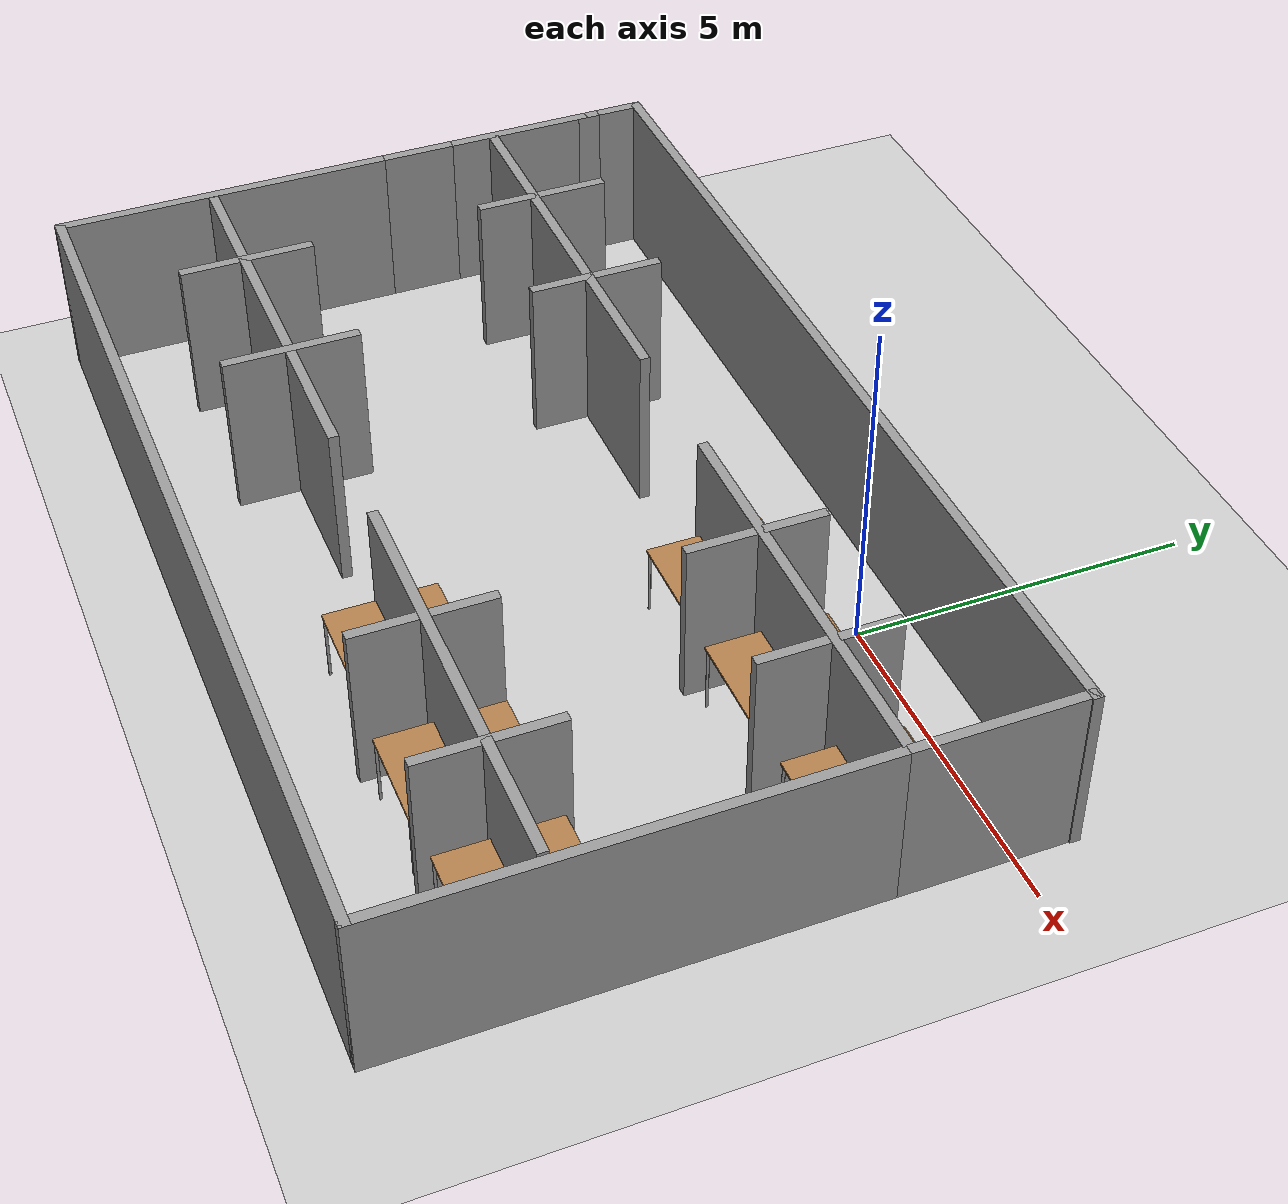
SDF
<sdf version="1.7">
 <world name="default">
  <model name="ground_plane">
   <static>1</static>
   <link name="link">
    <collision name="collision">
     <geometry><plane><normal>0 0 1</normal><size>100 100</size></plane></geometry>
     <surface><friction><ode><mu>100</mu><mu2>50</mu2></ode></friction></surface>
    </collision>
    <visual name="visual">
     <cast_shadows>0</cast_shadows>
     <geometry><plane><normal>0 0 1</normal><size>100 100</size></plane></geometry>
     <material>
      <script><uri>file://media/materials/scripts/gazebo.material</uri><name>Gazebo/Grey</name></script>
     </material>
    </visual>
   </link>
  </model>
  <model name="half_square">
   <pose>-2.87363 -3.76482 0 0 -0 0</pose>
   <link name="Wall_0">
    <collision name="Wall_0_Collision">
     <geometry><box><size>14.5 0.15 2.5</size></box></geometry>
     <pose>0 0 1.25 0 -0 0</pose>
    </collision>
    <visual name="Wall_0_Visual">
     <pose>0 0 1.25 0 -0 0</pose>
     <geometry><box><size>14.5 0.15 2.5</size></box></geometry>
     <material>
      <script><uri>file://media/materials/scripts/gazebo.material</uri><name>Gazebo/Grey</name></script>
      <ambient>1 1 1 1</ambient>
     </material>
     <meta><layer>0</layer></meta>
    </visual>
    <pose>-0.010056 -4.61503 0 0 -0 0</pose>
   </link>
   <link name="Wall_11">
    <collision name="Wall_11_Collision">
     <geometry><box><size>2.5 0.15 2.5</size></box></geometry>
     <pose>0 0 1.25 0 -0 0</pose>
    </collision>
    <visual name="Wall_11_Visual">
     <pose>0 0 1.25 0 -0 0</pose>
     <geometry><box><size>2.5 0.15 2.5</size></box></geometry>
     <material>
      <script><uri>file://media/materials/scripts/gazebo.material</uri><name>Gazebo/Grey</name></script>
      <ambient>1 1 1 1</ambient>
     </material>
     <meta><layer>0</layer></meta>
    </visual>
    <pose>7.16494 3.40997 0 0 -0 1.5708</pose>
   </link>
   <link name="Wall_13">
    <collision name="Wall_13_Collision">
     <geometry><box><size>0.730235 0.15 2.5</size></box></geometry>
     <pose>0 0 1.25 0 -0 0</pose>
    </collision>
    <visual name="Wall_13_Visual">
     <pose>0 0 1.25 0 -0 0</pose>
     <geometry><box><size>0.730235 0.15 2.5</size></box></geometry>
     <material>
      <script><uri>file://media/materials/scripts/gazebo.material</uri><name>Gazebo/Grey</name></script>
      <ambient>1 1 1 1</ambient>
     </material>
     <meta><layer>0</layer></meta>
    </visual>
    <pose>-7.18506 4.32491 0 0 -0 1.5708</pose>
   </link>
   <link name="Wall_14">
    <collision name="Wall_14_Collision">
     <geometry><box><size>14.5 0.15 2.5</size></box></geometry>
     <pose>0 0 1.25 0 -0 0</pose>
    </collision>
    <visual name="Wall_14_Visual">
     <pose>0 0 1.25 0 -0 0</pose>
     <geometry><box><size>14.5 0.15 2.5</size></box></geometry>
     <material>
      <script><uri>file://media/materials/scripts/gazebo.material</uri><name>Gazebo/Grey</name></script>
      <ambient>1 1 1 1</ambient>
     </material>
     <meta><layer>0</layer></meta>
    </visual>
    <pose>0.010057 4.61486 0 0 -0 0</pose>
   </link>
   <link name="Wall_2">
    <collision name="Wall_2_Collision">
     <geometry><box><size>5.25 0.15 2.5</size></box></geometry>
     <pose>0 0 1.25 0 -0 0</pose>
    </collision>
    <visual name="Wall_2_Visual">
     <pose>0 0 1.25 0 -0 0</pose>
     <geometry><box><size>5.25 0.15 2.5</size></box></geometry>
     <material>
      <script><uri>file://media/materials/scripts/gazebo.material</uri><name>Gazebo/Grey</name></script>
      <ambient>1 1 1 1</ambient>
     </material>
     <meta><layer>0</layer></meta>
    </visual>
    <pose>-7.18506 -2.06503 0 0 -0 1.5708</pose>
   </link>
   <link name="Wall_4">
    <collision name="Wall_4_Collision">
     <geometry><box><size>7 0.15 2.5</size></box></geometry>
     <pose>0 0 1.25 0 -0 0</pose>
    </collision>
    <visual name="Wall_4_Visual">
     <pose>0 0 1.25 0 -0 0</pose>
     <geometry><box><size>7 0.15 2.5</size></box></geometry>
     <material>
      <script><uri>file://media/materials/scripts/gazebo.material</uri><name>Gazebo/Grey</name></script>
      <ambient>1 1 1 1</ambient>
     </material>
     <meta><layer>0</layer></meta>
    </visual>
    <pose>7.16494 -1.19003 0 0 -0 1.5708</pose>
   </link>
   <link name="Wall_6">
    <collision name="Wall_6_Collision">
     <geometry><box><size>1.25 0.15 2.5</size></box></geometry>
     <pose>0 0 1.25 0 -0 0</pose>
    </collision>
    <visual name="Wall_6_Visual">
     <pose>0 0 1.25 0 -0 0</pose>
     <geometry><box><size>1.25 0.15 2.5</size></box></geometry>
     <material>
      <script><uri>file://media/materials/scripts/gazebo.material</uri><name>Gazebo/Grey</name></script>
      <ambient>1 1 1 1</ambient>
     </material>
     <meta><layer>0</layer></meta>
    </visual>
    <pose>-7.18506 1.03497 0 0 -0 1.5708</pose>
   </link>
   <link name="Wall_8">
    <collision name="Wall_8_Collision">
     <geometry><box><size>2.25 0.15 2.5</size></box></geometry>
     <pose>0 0 1.25 0 -0 0</pose>
    </collision>
    <visual name="Wall_8_Visual">
     <pose>0 0 1.25 0 -0 0</pose>
     <geometry><box><size>2.25 0.15 2.5</size></box></geometry>
     <material>
      <script><uri>file://media/materials/scripts/gazebo.material</uri><name>Gazebo/Grey</name></script>
      <ambient>1 1 1 1</ambient>
     </material>
     <meta><layer>0</layer></meta>
    </visual>
    <pose>-7.18506 2.63497 0 0 -0 1.5708</pose>
   </link>
   <link name="Wall_9">
    <collision name="Wall_9_Collision">
     <geometry><box><size>0.5 0.15 2.5</size></box></geometry>
     <pose>0 0 1.25 0 -0 0</pose>
    </collision>
    <visual name="Wall_9_Visual">
     <pose>0 0 1.25 0 -0 0</pose>
     <geometry><box><size>0.5 0.15 2.5</size></box></geometry>
     <material>
      <script><uri>file://media/materials/scripts/gazebo.material</uri><name>Gazebo/Grey</name></script>
      <ambient>1 1 1 1</ambient>
     </material>
     <meta><layer>0</layer></meta>
    </visual>
    <pose>-7.18506 3.85997 0 0 -0 1.5708</pose>
   </link>
   <static>1</static>
  </model>
  <model name="cubicle_walls">
   <pose>-2.89093 -3.53337 0 0 -0 0</pose>
   <link name="Wall_23">
    <collision name="Wall_23_Collision">
     <geometry><box><size>6 0.15 2.5</size></box></geometry>
     <pose>0 0 1.25 0 -0 0</pose>
    </collision>
    <visual name="Wall_23_Visual">
     <pose>0 0 1.25 0 -0 0</pose>
     <geometry><box><size>6 0.15 2.5</size></box></geometry>
     <material>
      <script><uri>file://media/materials/scripts/gazebo.material</uri><name>Gazebo/Grey</name></script>
      <ambient>1 1 1 1</ambient>
     </material>
     <meta><layer>0</layer></meta>
    </visual>
    <pose>4.1274 1.95737 0 0 -0 0</pose>
   </link>
   <link name="Wall_25">
    <collision name="Wall_25_Collision">
     <geometry><box><size>6.25 0.15 2.5</size></box></geometry>
     <pose>0 0 1.25 0 -0 0</pose>
    </collision>
    <visual name="Wall_25_Visual">
     <pose>0 0 1.25 0 -0 0</pose>
     <geometry><box><size>6.25 0.15 2.5</size></box></geometry>
     <material>
      <script><uri>file://media/materials/scripts/gazebo.material</uri><name>Gazebo/Grey</name></script>
      <ambient>1 1 1 1</ambient>
     </material>
     <meta><layer>0</layer></meta>
    </visual>
    <pose>3.94688 -2.51492 0 0 -0 0</pose>
   </link>
   <link name="Wall_27">
    <collision name="Wall_27_Collision">
     <geometry><box><size>6.25 0.15 2.5</size></box></geometry>
     <pose>0 0 1.25 0 -0 0</pose>
    </collision>
    <visual name="Wall_27_Visual">
     <pose>0 0 1.25 0 -0 0</pose>
     <geometry><box><size>6.25 0.15 2.5</size></box></geometry>
     <material>
      <script><uri>file://media/materials/scripts/gazebo.material</uri><name>Gazebo/Grey</name></script>
      <ambient>1 1 1 1</ambient>
     </material>
     <meta><layer>0</layer></meta>
    </visual>
    <pose>-3.9582 -2.5354 0 0 -0 3.14159</pose>
   </link>
   <link name="Wall_29">
    <collision name="Wall_29_Collision">
     <geometry><box><size>6.25 0.15 2.5</size></box></geometry>
     <pose>0 0 1.25 0 -0 0</pose>
    </collision>
    <visual name="Wall_29_Visual">
     <pose>0 0 1.25 0 -0 0</pose>
     <geometry><box><size>6.25 0.15 2.5</size></box></geometry>
     <material>
      <script><uri>file://media/materials/scripts/gazebo.material</uri><name>Gazebo/Grey</name></script>
      <ambient>1 1 1 1</ambient>
     </material>
     <meta><layer>0</layer></meta>
    </visual>
    <pose>-4.0024 1.95695 0 0 -0 3.14159</pose>
   </link>
   <link name="Wall_32">
    <collision name="Wall_32_Collision">
     <geometry><box><size>2 0.15 2.5</size></box></geometry>
     <pose>0 0 1.25 0 -0 0</pose>
    </collision>
    <visual name="Wall_32_Visual">
     <pose>0 0 1.25 0 -0 0</pose>
     <geometry><box><size>2 0.15 2.5</size></box></geometry>
     <material>
      <script><uri>file://media/materials/scripts/gazebo.material</uri><name>Gazebo/Grey</name></script>
      <ambient>1 1 1 1</ambient>
     </material>
     <meta><layer>0</layer></meta>
    </visual>
    <pose>5.20289 -2.49121 0 0 -0 -1.5708</pose>
   </link>
   <link name="Wall_34">
    <collision name="Wall_34_Collision">
     <geometry><box><size>2 0.15 2.5</size></box></geometry>
     <pose>0 0 1.25 0 -0 0</pose>
    </collision>
    <visual name="Wall_34_Visual">
     <pose>0 0 1.25 0 -0 0</pose>
     <geometry><box><size>2 0.15 2.5</size></box></geometry>
     <material>
      <script><uri>file://media/materials/scripts/gazebo.material</uri><name>Gazebo/Grey</name></script>
      <ambient>1 1 1 1</ambient>
     </material>
     <meta><layer>0</layer></meta>
    </visual>
    <pose>2.90891 -2.53337 0 0 -0 -1.5708</pose>
   </link>
   <link name="Wall_36">
    <collision name="Wall_36_Collision">
     <geometry><box><size>2 0.15 2.5</size></box></geometry>
     <pose>0 0 1.25 0 -0 0</pose>
    </collision>
    <visual name="Wall_36_Visual">
     <pose>0 0 1.25 0 -0 0</pose>
     <geometry><box><size>2 0.15 2.5</size></box></geometry>
     <material>
      <script><uri>file://media/materials/scripts/gazebo.material</uri><name>Gazebo/Grey</name></script>
      <ambient>1 1 1 1</ambient>
     </material>
     <meta><layer>0</layer></meta>
    </visual>
    <pose>5.17332 1.88452 0 0 -0 1.5708</pose>
   </link>
   <link name="Wall_40">
    <collision name="Wall_40_Collision">
     <geometry><box><size>2 0.15 2.5</size></box></geometry>
     <pose>0 0 1.25 0 -0 0</pose>
    </collision>
    <visual name="Wall_40_Visual">
     <pose>0 0 1.25 0 -0 0</pose>
     <geometry><box><size>2 0.15 2.5</size></box></geometry>
     <material>
      <script><uri>file://media/materials/scripts/gazebo.material</uri><name>Gazebo/Grey</name></script>
      <ambient>1 1 1 1</ambient>
     </material>
     <meta><layer>0</layer></meta>
    </visual>
    <pose>3.01751 1.89009 0 0 -0 1.5708</pose>
   </link>
   <link name="Wall_42">
    <collision name="Wall_42_Collision">
     <geometry><box><size>2 0.15 2.5</size></box></geometry>
     <pose>0 0 1.25 0 -0 0</pose>
    </collision>
    <visual name="Wall_42_Visual">
     <pose>0 0 1.25 0 -0 0</pose>
     <geometry><box><size>2 0.15 2.5</size></box></geometry>
     <material>
      <script><uri>file://media/materials/scripts/gazebo.material</uri><name>Gazebo/Grey</name></script>
      <ambient>1 1 1 1</ambient>
     </material>
     <meta><layer>0</layer></meta>
    </visual>
    <pose>-3.01912 2.06337 0 0 -0 -1.5708</pose>
   </link>
   <link name="Wall_44">
    <collision name="Wall_44_Collision">
     <geometry><box><size>2 0.15 2.5</size></box></geometry>
     <pose>0 0 1.25 0 -0 0</pose>
    </collision>
    <visual name="Wall_44_Visual">
     <pose>0 0 1.25 0 -0 0</pose>
     <geometry><box><size>2 0.15 2.5</size></box></geometry>
     <material>
      <script><uri>file://media/materials/scripts/gazebo.material</uri><name>Gazebo/Grey</name></script>
      <ambient>1 1 1 1</ambient>
     </material>
     <meta><layer>0</layer></meta>
    </visual>
    <pose>-5.31032 2.08086 0 0 -0 -1.5708</pose>
   </link>
   <link name="Wall_46">
    <collision name="Wall_46_Collision">
     <geometry><box><size>2 0.15 2.5</size></box></geometry>
     <pose>0 0 1.25 0 -0 0</pose>
    </collision>
    <visual name="Wall_46_Visual">
     <pose>0 0 1.25 0 -0 0</pose>
     <geometry><box><size>2 0.15 2.5</size></box></geometry>
     <material>
      <script><uri>file://media/materials/scripts/gazebo.material</uri><name>Gazebo/Grey</name></script>
      <ambient>1 1 1 1</ambient>
     </material>
     <meta><layer>0</layer></meta>
    </visual>
    <pose>-2.96649 -2.51109 0 0 -0 -1.5708</pose>
   </link>
   <link name="Wall_48">
    <collision name="Wall_48_Collision">
     <geometry><box><size>2 0.15 2.5</size></box></geometry>
     <pose>0 0 1.25 0 -0 0</pose>
    </collision>
    <visual name="Wall_48_Visual">
     <pose>0 0 1.25 0 -0 0</pose>
     <geometry><box><size>2 0.15 2.5</size></box></geometry>
     <material>
      <script><uri>file://media/materials/scripts/gazebo.material</uri><name>Gazebo/Grey</name></script>
      <ambient>1 1 1 1</ambient>
     </material>
     <meta><layer>0</layer></meta>
    </visual>
    <pose>-5.32952 -2.50161 0 0 -0 -1.5708</pose>
   </link>
   <static>1</static>
  </model>
  <model name="table">
   <static>1</static>
   <link name="link">
    <collision name="surface">
     <pose>0 0 1 0 -0 0</pose>
     <geometry><box><size>1.5 0.8 0.03</size></box></geometry>
     <surface><friction><ode><mu>0.6</mu><mu2>0.6</mu2></ode></friction></surface>
    </collision>
    <visual name="visual1">
     <pose>0 0 1 0 -0 0</pose>
     <geometry><box><size>1.5 0.8 0.03</size></box></geometry>
     <material>
      <script><uri>file://media/materials/scripts/gazebo.material</uri><name>Gazebo/Wood</name></script>
     </material>
    </visual>
    <collision name="front_left_leg">
     <pose>0.68 0.38 0.5 0 -0 0</pose>
     <geometry><cylinder><radius>0.02</radius><length>1</length></cylinder></geometry>
    </collision>
    <visual name="front_left_leg">
     <pose>0.68 0.38 0.5 0 -0 0</pose>
     <geometry><cylinder><radius>0.02</radius><length>1</length></cylinder></geometry>
     <material>
      <script><uri>file://media/materials/scripts/gazebo.material</uri><name>Gazebo/Grey</name></script>
     </material>
    </visual>
    <collision name="front_right_leg">
     <pose>0.68 -0.38 0.5 0 -0 0</pose>
     <geometry><cylinder><radius>0.02</radius><length>1</length></cylinder></geometry>
    </collision>
    <visual name="front_right_leg">
     <pose>0.68 -0.38 0.5 0 -0 0</pose>
     <geometry><cylinder><radius>0.02</radius><length>1</length></cylinder></geometry>
     <material>
      <script><uri>file://media/materials/scripts/gazebo.material</uri><name>Gazebo/Grey</name></script>
     </material>
    </visual>
    <collision name="back_right_leg">
     <pose>-0.68 -0.38 0.5 0 -0 0</pose>
     <geometry><cylinder><radius>0.02</radius><length>1</length></cylinder></geometry>
    </collision>
    <visual name="back_right_leg">
     <pose>-0.68 -0.38 0.5 0 -0 0</pose>
     <geometry><cylinder><radius>0.02</radius><length>1</length></cylinder></geometry>
     <material>
      <script><uri>file://media/materials/scripts/gazebo.material</uri><name>Gazebo/Grey</name></script>
     </material>
    </visual>
    <collision name="back_left_leg">
     <pose>-0.68 0.38 0.5 0 -0 0</pose>
     <geometry><cylinder><radius>0.02</radius><length>1</length></cylinder></geometry>
    </collision>
    <visual name="back_left_leg">
     <pose>-0.68 0.38 0.5 0 -0 0</pose>
     <geometry><cylinder><radius>0.02</radius><length>1</length></cylinder></geometry>
     <material>
      <script><uri>file://media/materials/scripts/gazebo.material</uri><name>Gazebo/Grey</name></script>
     </material>
    </visual>
   </link>
   <pose>1.18362 -1.10469 0 0 -0 0</pose>
  </model>
  <model name="table_0">
   <static>1</static>
   <link name="link">
    <collision name="surface">
     <pose>0 0 1 0 -0 0</pose>
     <geometry><box><size>1.5 0.8 0.03</size></box></geometry>
     <surface><friction><ode><mu>0.6</mu><mu2>0.6</mu2></ode></friction></surface>
    </collision>
    <visual name="visual1">
     <pose>0 0 1 0 -0 0</pose>
     <geometry><box><size>1.5 0.8 0.03</size></box></geometry>
     <material>
      <script><uri>file://media/materials/scripts/gazebo.material</uri><name>Gazebo/Wood</name></script>
     </material>
    </visual>
    <collision name="front_left_leg">
     <pose>0.68 0.38 0.5 0 -0 0</pose>
     <geometry><cylinder><radius>0.02</radius><length>1</length></cylinder></geometry>
    </collision>
    <visual name="front_left_leg">
     <pose>0.68 0.38 0.5 0 -0 0</pose>
     <geometry><cylinder><radius>0.02</radius><length>1</length></cylinder></geometry>
     <material>
      <script><uri>file://media/materials/scripts/gazebo.material</uri><name>Gazebo/Grey</name></script>
     </material>
    </visual>
    <collision name="front_right_leg">
     <pose>0.68 -0.38 0.5 0 -0 0</pose>
     <geometry><cylinder><radius>0.02</radius><length>1</length></cylinder></geometry>
    </collision>
    <visual name="front_right_leg">
     <pose>0.68 -0.38 0.5 0 -0 0</pose>
     <geometry><cylinder><radius>0.02</radius><length>1</length></cylinder></geometry>
     <material>
      <script><uri>file://media/materials/scripts/gazebo.material</uri><name>Gazebo/Grey</name></script>
     </material>
    </visual>
    <collision name="back_right_leg">
     <pose>-0.68 -0.38 0.5 0 -0 0</pose>
     <geometry><cylinder><radius>0.02</radius><length>1</length></cylinder></geometry>
    </collision>
    <visual name="back_right_leg">
     <pose>-0.68 -0.38 0.5 0 -0 0</pose>
     <geometry><cylinder><radius>0.02</radius><length>1</length></cylinder></geometry>
     <material>
      <script><uri>file://media/materials/scripts/gazebo.material</uri><name>Gazebo/Grey</name></script>
     </material>
    </visual>
    <collision name="back_left_leg">
     <pose>-0.68 0.38 0.5 0 -0 0</pose>
     <geometry><cylinder><radius>0.02</radius><length>1</length></cylinder></geometry>
    </collision>
    <visual name="back_left_leg">
     <pose>-0.68 0.38 0.5 0 -0 0</pose>
     <geometry><cylinder><radius>0.02</radius><length>1</length></cylinder></geometry>
     <material>
      <script><uri>file://media/materials/scripts/gazebo.material</uri><name>Gazebo/Grey</name></script>
     </material>
    </visual>
   </link>
   <pose>3.41773 -1.11914 0 0 -0 0</pose>
  </model>
  <model name="table_1">
   <static>1</static>
   <link name="link">
    <collision name="surface">
     <pose>0 0 1 0 -0 0</pose>
     <geometry><box><size>1.5 0.8 0.03</size></box></geometry>
     <surface><friction><ode><mu>0.6</mu><mu2>0.6</mu2></ode></friction></surface>
    </collision>
    <visual name="visual1">
     <pose>0 0 1 0 -0 0</pose>
     <geometry><box><size>1.5 0.8 0.03</size></box></geometry>
     <material>
      <script><uri>file://media/materials/scripts/gazebo.material</uri><name>Gazebo/Wood</name></script>
     </material>
    </visual>
    <collision name="front_left_leg">
     <pose>0.68 0.38 0.5 0 -0 0</pose>
     <geometry><cylinder><radius>0.02</radius><length>1</length></cylinder></geometry>
    </collision>
    <visual name="front_left_leg">
     <pose>0.68 0.38 0.5 0 -0 0</pose>
     <geometry><cylinder><radius>0.02</radius><length>1</length></cylinder></geometry>
     <material>
      <script><uri>file://media/materials/scripts/gazebo.material</uri><name>Gazebo/Grey</name></script>
     </material>
    </visual>
    <collision name="front_right_leg">
     <pose>0.68 -0.38 0.5 0 -0 0</pose>
     <geometry><cylinder><radius>0.02</radius><length>1</length></cylinder></geometry>
    </collision>
    <visual name="front_right_leg">
     <pose>0.68 -0.38 0.5 0 -0 0</pose>
     <geometry><cylinder><radius>0.02</radius><length>1</length></cylinder></geometry>
     <material>
      <script><uri>file://media/materials/scripts/gazebo.material</uri><name>Gazebo/Grey</name></script>
     </material>
    </visual>
    <collision name="back_right_leg">
     <pose>-0.68 -0.38 0.5 0 -0 0</pose>
     <geometry><cylinder><radius>0.02</radius><length>1</length></cylinder></geometry>
    </collision>
    <visual name="back_right_leg">
     <pose>-0.68 -0.38 0.5 0 -0 0</pose>
     <geometry><cylinder><radius>0.02</radius><length>1</length></cylinder></geometry>
     <material>
      <script><uri>file://media/materials/scripts/gazebo.material</uri><name>Gazebo/Grey</name></script>
     </material>
    </visual>
    <collision name="back_left_leg">
     <pose>-0.68 0.38 0.5 0 -0 0</pose>
     <geometry><cylinder><radius>0.02</radius><length>1</length></cylinder></geometry>
    </collision>
    <visual name="back_left_leg">
     <pose>-0.68 0.38 0.5 0 -0 0</pose>
     <geometry><cylinder><radius>0.02</radius><length>1</length></cylinder></geometry>
     <material>
      <script><uri>file://media/materials/scripts/gazebo.material</uri><name>Gazebo/Grey</name></script>
     </material>
    </visual>
   </link>
   <pose>3.39795 -2.01239 0 0 -0 0</pose>
  </model>
  <model name="table_2">
   <static>1</static>
   <link name="link">
    <collision name="surface">
     <pose>0 0 1 0 -0 0</pose>
     <geometry><box><size>1.5 0.8 0.03</size></box></geometry>
     <surface><friction><ode><mu>0.6</mu><mu2>0.6</mu2></ode></friction></surface>
    </collision>
    <visual name="visual1">
     <pose>0 0 1 0 -0 0</pose>
     <geometry><box><size>1.5 0.8 0.03</size></box></geometry>
     <material>
      <script><uri>file://media/materials/scripts/gazebo.material</uri><name>Gazebo/Wood</name></script>
     </material>
    </visual>
    <collision name="front_left_leg">
     <pose>0.68 0.38 0.5 0 -0 0</pose>
     <geometry><cylinder><radius>0.02</radius><length>1</length></cylinder></geometry>
    </collision>
    <visual name="front_left_leg">
     <pose>0.68 0.38 0.5 0 -0 0</pose>
     <geometry><cylinder><radius>0.02</radius><length>1</length></cylinder></geometry>
     <material>
      <script><uri>file://media/materials/scripts/gazebo.material</uri><name>Gazebo/Grey</name></script>
     </material>
    </visual>
    <collision name="front_right_leg">
     <pose>0.68 -0.38 0.5 0 -0 0</pose>
     <geometry><cylinder><radius>0.02</radius><length>1</length></cylinder></geometry>
    </collision>
    <visual name="front_right_leg">
     <pose>0.68 -0.38 0.5 0 -0 0</pose>
     <geometry><cylinder><radius>0.02</radius><length>1</length></cylinder></geometry>
     <material>
      <script><uri>file://media/materials/scripts/gazebo.material</uri><name>Gazebo/Grey</name></script>
     </material>
    </visual>
    <collision name="back_right_leg">
     <pose>-0.68 -0.38 0.5 0 -0 0</pose>
     <geometry><cylinder><radius>0.02</radius><length>1</length></cylinder></geometry>
    </collision>
    <visual name="back_right_leg">
     <pose>-0.68 -0.38 0.5 0 -0 0</pose>
     <geometry><cylinder><radius>0.02</radius><length>1</length></cylinder></geometry>
     <material>
      <script><uri>file://media/materials/scripts/gazebo.material</uri><name>Gazebo/Grey</name></script>
     </material>
    </visual>
    <collision name="back_left_leg">
     <pose>-0.68 0.38 0.5 0 -0 0</pose>
     <geometry><cylinder><radius>0.02</radius><length>1</length></cylinder></geometry>
    </collision>
    <visual name="back_left_leg">
     <pose>-0.68 0.38 0.5 0 -0 0</pose>
     <geometry><cylinder><radius>0.02</radius><length>1</length></cylinder></geometry>
     <material>
      <script><uri>file://media/materials/scripts/gazebo.material</uri><name>Gazebo/Grey</name></script>
     </material>
    </visual>
   </link>
   <pose>1.17009 -2.05921 0 0 -0 0</pose>
  </model>
  <model name="table_3">
   <static>1</static>
   <link name="link">
    <collision name="surface">
     <pose>0 0 1 0 -0 0</pose>
     <geometry><box><size>1.5 0.8 0.03</size></box></geometry>
     <surface><friction><ode><mu>0.6</mu><mu2>0.6</mu2></ode></friction></surface>
    </collision>
    <visual name="visual1">
     <pose>0 0 1 0 -0 0</pose>
     <geometry><box><size>1.5 0.8 0.03</size></box></geometry>
     <material>
      <script><uri>file://media/materials/scripts/gazebo.material</uri><name>Gazebo/Wood</name></script>
     </material>
    </visual>
    <collision name="front_left_leg">
     <pose>0.68 0.38 0.5 0 -0 0</pose>
     <geometry><cylinder><radius>0.02</radius><length>1</length></cylinder></geometry>
    </collision>
    <visual name="front_left_leg">
     <pose>0.68 0.38 0.5 0 -0 0</pose>
     <geometry><cylinder><radius>0.02</radius><length>1</length></cylinder></geometry>
     <material>
      <script><uri>file://media/materials/scripts/gazebo.material</uri><name>Gazebo/Grey</name></script>
     </material>
    </visual>
    <collision name="front_right_leg">
     <pose>0.68 -0.38 0.5 0 -0 0</pose>
     <geometry><cylinder><radius>0.02</radius><length>1</length></cylinder></geometry>
    </collision>
    <visual name="front_right_leg">
     <pose>0.68 -0.38 0.5 0 -0 0</pose>
     <geometry><cylinder><radius>0.02</radius><length>1</length></cylinder></geometry>
     <material>
      <script><uri>file://media/materials/scripts/gazebo.material</uri><name>Gazebo/Grey</name></script>
     </material>
    </visual>
    <collision name="back_right_leg">
     <pose>-0.68 -0.38 0.5 0 -0 0</pose>
     <geometry><cylinder><radius>0.02</radius><length>1</length></cylinder></geometry>
    </collision>
    <visual name="back_right_leg">
     <pose>-0.68 -0.38 0.5 0 -0 0</pose>
     <geometry><cylinder><radius>0.02</radius><length>1</length></cylinder></geometry>
     <material>
      <script><uri>file://media/materials/scripts/gazebo.material</uri><name>Gazebo/Grey</name></script>
     </material>
    </visual>
    <collision name="back_left_leg">
     <pose>-0.68 0.38 0.5 0 -0 0</pose>
     <geometry><cylinder><radius>0.02</radius><length>1</length></cylinder></geometry>
    </collision>
    <visual name="back_left_leg">
     <pose>-0.68 0.38 0.5 0 -0 0</pose>
     <geometry><cylinder><radius>0.02</radius><length>1</length></cylinder></geometry>
     <material>
      <script><uri>file://media/materials/scripts/gazebo.material</uri><name>Gazebo/Grey</name></script>
     </material>
    </visual>
   </link>
   <pose>-0.867477 -2.03442 0 0 -0 0</pose>
  </model>
  <model name="table_4">
   <static>1</static>
   <link name="link">
    <collision name="surface">
     <pose>0 0 1 0 -0 0</pose>
     <geometry><box><size>1.5 0.8 0.03</size></box></geometry>
     <surface><friction><ode><mu>0.6</mu><mu2>0.6</mu2></ode></friction></surface>
    </collision>
    <visual name="visual1">
     <pose>0 0 1 0 -0 0</pose>
     <geometry><box><size>1.5 0.8 0.03</size></box></geometry>
     <material>
      <script><uri>file://media/materials/scripts/gazebo.material</uri><name>Gazebo/Wood</name></script>
     </material>
    </visual>
    <collision name="front_left_leg">
     <pose>0.68 0.38 0.5 0 -0 0</pose>
     <geometry><cylinder><radius>0.02</radius><length>1</length></cylinder></geometry>
    </collision>
    <visual name="front_left_leg">
     <pose>0.68 0.38 0.5 0 -0 0</pose>
     <geometry><cylinder><radius>0.02</radius><length>1</length></cylinder></geometry>
     <material>
      <script><uri>file://media/materials/scripts/gazebo.material</uri><name>Gazebo/Grey</name></script>
     </material>
    </visual>
    <collision name="front_right_leg">
     <pose>0.68 -0.38 0.5 0 -0 0</pose>
     <geometry><cylinder><radius>0.02</radius><length>1</length></cylinder></geometry>
    </collision>
    <visual name="front_right_leg">
     <pose>0.68 -0.38 0.5 0 -0 0</pose>
     <geometry><cylinder><radius>0.02</radius><length>1</length></cylinder></geometry>
     <material>
      <script><uri>file://media/materials/scripts/gazebo.material</uri><name>Gazebo/Grey</name></script>
     </material>
    </visual>
    <collision name="back_right_leg">
     <pose>-0.68 -0.38 0.5 0 -0 0</pose>
     <geometry><cylinder><radius>0.02</radius><length>1</length></cylinder></geometry>
    </collision>
    <visual name="back_right_leg">
     <pose>-0.68 -0.38 0.5 0 -0 0</pose>
     <geometry><cylinder><radius>0.02</radius><length>1</length></cylinder></geometry>
     <material>
      <script><uri>file://media/materials/scripts/gazebo.material</uri><name>Gazebo/Grey</name></script>
     </material>
    </visual>
    <collision name="back_left_leg">
     <pose>-0.68 0.38 0.5 0 -0 0</pose>
     <geometry><cylinder><radius>0.02</radius><length>1</length></cylinder></geometry>
    </collision>
    <visual name="back_left_leg">
     <pose>-0.68 0.38 0.5 0 -0 0</pose>
     <geometry><cylinder><radius>0.02</radius><length>1</length></cylinder></geometry>
     <material>
      <script><uri>file://media/materials/scripts/gazebo.material</uri><name>Gazebo/Grey</name></script>
     </material>
    </visual>
   </link>
   <pose>-0.882753 -1.12704 0 0 -0 0</pose>
  </model>
  <model name="table_5">
   <static>1</static>
   <link name="link">
    <collision name="surface">
     <pose>0 0 1 0 -0 0</pose>
     <geometry><box><size>1.5 0.8 0.03</size></box></geometry>
     <surface><friction><ode><mu>0.6</mu><mu2>0.6</mu2></ode></friction></surface>
    </collision>
    <visual name="visual1">
     <pose>0 0 1 0 -0 0</pose>
     <geometry><box><size>1.5 0.8 0.03</size></box></geometry>
     <material>
      <script><uri>file://media/materials/scripts/gazebo.material</uri><name>Gazebo/Wood</name></script>
     </material>
    </visual>
    <collision name="front_left_leg">
     <pose>0.68 0.38 0.5 0 -0 0</pose>
     <geometry><cylinder><radius>0.02</radius><length>1</length></cylinder></geometry>
    </collision>
    <visual name="front_left_leg">
     <pose>0.68 0.38 0.5 0 -0 0</pose>
     <geometry><cylinder><radius>0.02</radius><length>1</length></cylinder></geometry>
     <material>
      <script><uri>file://media/materials/scripts/gazebo.material</uri><name>Gazebo/Grey</name></script>
     </material>
    </visual>
    <collision name="front_right_leg">
     <pose>0.68 -0.38 0.5 0 -0 0</pose>
     <geometry><cylinder><radius>0.02</radius><length>1</length></cylinder></geometry>
    </collision>
    <visual name="front_right_leg">
     <pose>0.68 -0.38 0.5 0 -0 0</pose>
     <geometry><cylinder><radius>0.02</radius><length>1</length></cylinder></geometry>
     <material>
      <script><uri>file://media/materials/scripts/gazebo.material</uri><name>Gazebo/Grey</name></script>
     </material>
    </visual>
    <collision name="back_right_leg">
     <pose>-0.68 -0.38 0.5 0 -0 0</pose>
     <geometry><cylinder><radius>0.02</radius><length>1</length></cylinder></geometry>
    </collision>
    <visual name="back_right_leg">
     <pose>-0.68 -0.38 0.5 0 -0 0</pose>
     <geometry><cylinder><radius>0.02</radius><length>1</length></cylinder></geometry>
     <material>
      <script><uri>file://media/materials/scripts/gazebo.material</uri><name>Gazebo/Grey</name></script>
     </material>
    </visual>
    <collision name="back_left_leg">
     <pose>-0.68 0.38 0.5 0 -0 0</pose>
     <geometry><cylinder><radius>0.02</radius><length>1</length></cylinder></geometry>
    </collision>
    <visual name="back_left_leg">
     <pose>-0.68 0.38 0.5 0 -0 0</pose>
     <geometry><cylinder><radius>0.02</radius><length>1</length></cylinder></geometry>
     <material>
      <script><uri>file://media/materials/scripts/gazebo.material</uri><name>Gazebo/Grey</name></script>
     </material>
    </visual>
   </link>
   <pose>3.22024 -5.55279 0 0 -0 0</pose>
  </model>
  <model name="table_6">
   <static>1</static>
   <link name="link">
    <collision name="surface">
     <pose>0 0 1 0 -0 0</pose>
     <geometry><box><size>1.5 0.8 0.03</size></box></geometry>
     <surface><friction><ode><mu>0.6</mu><mu2>0.6</mu2></ode></friction></surface>
    </collision>
    <visual name="visual1">
     <pose>0 0 1 0 -0 0</pose>
     <geometry><box><size>1.5 0.8 0.03</size></box></geometry>
     <material>
      <script><uri>file://media/materials/scripts/gazebo.material</uri><name>Gazebo/Wood</name></script>
     </material>
    </visual>
    <collision name="front_left_leg">
     <pose>0.68 0.38 0.5 0 -0 0</pose>
     <geometry><cylinder><radius>0.02</radius><length>1</length></cylinder></geometry>
    </collision>
    <visual name="front_left_leg">
     <pose>0.68 0.38 0.5 0 -0 0</pose>
     <geometry><cylinder><radius>0.02</radius><length>1</length></cylinder></geometry>
     <material>
      <script><uri>file://media/materials/scripts/gazebo.material</uri><name>Gazebo/Grey</name></script>
     </material>
    </visual>
    <collision name="front_right_leg">
     <pose>0.68 -0.38 0.5 0 -0 0</pose>
     <geometry><cylinder><radius>0.02</radius><length>1</length></cylinder></geometry>
    </collision>
    <visual name="front_right_leg">
     <pose>0.68 -0.38 0.5 0 -0 0</pose>
     <geometry><cylinder><radius>0.02</radius><length>1</length></cylinder></geometry>
     <material>
      <script><uri>file://media/materials/scripts/gazebo.material</uri><name>Gazebo/Grey</name></script>
     </material>
    </visual>
    <collision name="back_right_leg">
     <pose>-0.68 -0.38 0.5 0 -0 0</pose>
     <geometry><cylinder><radius>0.02</radius><length>1</length></cylinder></geometry>
    </collision>
    <visual name="back_right_leg">
     <pose>-0.68 -0.38 0.5 0 -0 0</pose>
     <geometry><cylinder><radius>0.02</radius><length>1</length></cylinder></geometry>
     <material>
      <script><uri>file://media/materials/scripts/gazebo.material</uri><name>Gazebo/Grey</name></script>
     </material>
    </visual>
    <collision name="back_left_leg">
     <pose>-0.68 0.38 0.5 0 -0 0</pose>
     <geometry><cylinder><radius>0.02</radius><length>1</length></cylinder></geometry>
    </collision>
    <visual name="back_left_leg">
     <pose>-0.68 0.38 0.5 0 -0 0</pose>
     <geometry><cylinder><radius>0.02</radius><length>1</length></cylinder></geometry>
     <material>
      <script><uri>file://media/materials/scripts/gazebo.material</uri><name>Gazebo/Grey</name></script>
     </material>
    </visual>
   </link>
   <pose>1.12922 -5.55077 0 0 -0 0</pose>
  </model>
  <model name="table_7">
   <static>1</static>
   <link name="link">
    <collision name="surface">
     <pose>0 0 1 0 -0 0</pose>
     <geometry><box><size>1.5 0.8 0.03</size></box></geometry>
     <surface><friction><ode><mu>0.6</mu><mu2>0.6</mu2></ode></friction></surface>
    </collision>
    <visual name="visual1">
     <pose>0 0 1 0 -0 0</pose>
     <geometry><box><size>1.5 0.8 0.03</size></box></geometry>
     <material>
      <script><uri>file://media/materials/scripts/gazebo.material</uri><name>Gazebo/Wood</name></script>
     </material>
    </visual>
    <collision name="front_left_leg">
     <pose>0.68 0.38 0.5 0 -0 0</pose>
     <geometry><cylinder><radius>0.02</radius><length>1</length></cylinder></geometry>
    </collision>
    <visual name="front_left_leg">
     <pose>0.68 0.38 0.5 0 -0 0</pose>
     <geometry><cylinder><radius>0.02</radius><length>1</length></cylinder></geometry>
     <material>
      <script><uri>file://media/materials/scripts/gazebo.material</uri><name>Gazebo/Grey</name></script>
     </material>
    </visual>
    <collision name="front_right_leg">
     <pose>0.68 -0.38 0.5 0 -0 0</pose>
     <geometry><cylinder><radius>0.02</radius><length>1</length></cylinder></geometry>
    </collision>
    <visual name="front_right_leg">
     <pose>0.68 -0.38 0.5 0 -0 0</pose>
     <geometry><cylinder><radius>0.02</radius><length>1</length></cylinder></geometry>
     <material>
      <script><uri>file://media/materials/scripts/gazebo.material</uri><name>Gazebo/Grey</name></script>
     </material>
    </visual>
    <collision name="back_right_leg">
     <pose>-0.68 -0.38 0.5 0 -0 0</pose>
     <geometry><cylinder><radius>0.02</radius><length>1</length></cylinder></geometry>
    </collision>
    <visual name="back_right_leg">
     <pose>-0.68 -0.38 0.5 0 -0 0</pose>
     <geometry><cylinder><radius>0.02</radius><length>1</length></cylinder></geometry>
     <material>
      <script><uri>file://media/materials/scripts/gazebo.material</uri><name>Gazebo/Grey</name></script>
     </material>
    </visual>
    <collision name="back_left_leg">
     <pose>-0.68 0.38 0.5 0 -0 0</pose>
     <geometry><cylinder><radius>0.02</radius><length>1</length></cylinder></geometry>
    </collision>
    <visual name="back_left_leg">
     <pose>-0.68 0.38 0.5 0 -0 0</pose>
     <geometry><cylinder><radius>0.02</radius><length>1</length></cylinder></geometry>
     <material>
      <script><uri>file://media/materials/scripts/gazebo.material</uri><name>Gazebo/Grey</name></script>
     </material>
    </visual>
   </link>
   <pose>-1.2949 -5.65253 0 0 -0 0</pose>
  </model>
  <model name="table_8">
   <static>1</static>
   <link name="link">
    <collision name="surface">
     <pose>0 0 1 0 -0 0</pose>
     <geometry><box><size>1.5 0.8 0.03</size></box></geometry>
     <surface><friction><ode><mu>0.6</mu><mu2>0.6</mu2></ode></friction></surface>
    </collision>
    <visual name="visual1">
     <pose>0 0 1 0 -0 0</pose>
     <geometry><box><size>1.5 0.8 0.03</size></box></geometry>
     <material>
      <script><uri>file://media/materials/scripts/gazebo.material</uri><name>Gazebo/Wood</name></script>
     </material>
    </visual>
    <collision name="front_left_leg">
     <pose>0.68 0.38 0.5 0 -0 0</pose>
     <geometry><cylinder><radius>0.02</radius><length>1</length></cylinder></geometry>
    </collision>
    <visual name="front_left_leg">
     <pose>0.68 0.38 0.5 0 -0 0</pose>
     <geometry><cylinder><radius>0.02</radius><length>1</length></cylinder></geometry>
     <material>
      <script><uri>file://media/materials/scripts/gazebo.material</uri><name>Gazebo/Grey</name></script>
     </material>
    </visual>
    <collision name="front_right_leg">
     <pose>0.68 -0.38 0.5 0 -0 0</pose>
     <geometry><cylinder><radius>0.02</radius><length>1</length></cylinder></geometry>
    </collision>
    <visual name="front_right_leg">
     <pose>0.68 -0.38 0.5 0 -0 0</pose>
     <geometry><cylinder><radius>0.02</radius><length>1</length></cylinder></geometry>
     <material>
      <script><uri>file://media/materials/scripts/gazebo.material</uri><name>Gazebo/Grey</name></script>
     </material>
    </visual>
    <collision name="back_right_leg">
     <pose>-0.68 -0.38 0.5 0 -0 0</pose>
     <geometry><cylinder><radius>0.02</radius><length>1</length></cylinder></geometry>
    </collision>
    <visual name="back_right_leg">
     <pose>-0.68 -0.38 0.5 0 -0 0</pose>
     <geometry><cylinder><radius>0.02</radius><length>1</length></cylinder></geometry>
     <material>
      <script><uri>file://media/materials/scripts/gazebo.material</uri><name>Gazebo/Grey</name></script>
     </material>
    </visual>
    <collision name="back_left_leg">
     <pose>-0.68 0.38 0.5 0 -0 0</pose>
     <geometry><cylinder><radius>0.02</radius><length>1</length></cylinder></geometry>
    </collision>
    <visual name="back_left_leg">
     <pose>-0.68 0.38 0.5 0 -0 0</pose>
     <geometry><cylinder><radius>0.02</radius><length>1</length></cylinder></geometry>
     <material>
      <script><uri>file://media/materials/scripts/gazebo.material</uri><name>Gazebo/Grey</name></script>
     </material>
    </visual>
   </link>
   <pose>-1.27433 -6.46762 0 0 -0 0</pose>
  </model>
  <model name="table_9">
   <static>1</static>
   <link name="link">
    <collision name="surface">
     <pose>0 0 1 0 -0 0</pose>
     <geometry><box><size>1.5 0.8 0.03</size></box></geometry>
     <surface><friction><ode><mu>0.6</mu><mu2>0.6</mu2></ode></friction></surface>
    </collision>
    <visual name="visual1">
     <pose>0 0 1 0 -0 0</pose>
     <geometry><box><size>1.5 0.8 0.03</size></box></geometry>
     <material>
      <script><uri>file://media/materials/scripts/gazebo.material</uri><name>Gazebo/Wood</name></script>
     </material>
    </visual>
    <collision name="front_left_leg">
     <pose>0.68 0.38 0.5 0 -0 0</pose>
     <geometry><cylinder><radius>0.02</radius><length>1</length></cylinder></geometry>
    </collision>
    <visual name="front_left_leg">
     <pose>0.68 0.38 0.5 0 -0 0</pose>
     <geometry><cylinder><radius>0.02</radius><length>1</length></cylinder></geometry>
     <material>
      <script><uri>file://media/materials/scripts/gazebo.material</uri><name>Gazebo/Grey</name></script>
     </material>
    </visual>
    <collision name="front_right_leg">
     <pose>0.68 -0.38 0.5 0 -0 0</pose>
     <geometry><cylinder><radius>0.02</radius><length>1</length></cylinder></geometry>
    </collision>
    <visual name="front_right_leg">
     <pose>0.68 -0.38 0.5 0 -0 0</pose>
     <geometry><cylinder><radius>0.02</radius><length>1</length></cylinder></geometry>
     <material>
      <script><uri>file://media/materials/scripts/gazebo.material</uri><name>Gazebo/Grey</name></script>
     </material>
    </visual>
    <collision name="back_right_leg">
     <pose>-0.68 -0.38 0.5 0 -0 0</pose>
     <geometry><cylinder><radius>0.02</radius><length>1</length></cylinder></geometry>
    </collision>
    <visual name="back_right_leg">
     <pose>-0.68 -0.38 0.5 0 -0 0</pose>
     <geometry><cylinder><radius>0.02</radius><length>1</length></cylinder></geometry>
     <material>
      <script><uri>file://media/materials/scripts/gazebo.material</uri><name>Gazebo/Grey</name></script>
     </material>
    </visual>
    <collision name="back_left_leg">
     <pose>-0.68 0.38 0.5 0 -0 0</pose>
     <geometry><cylinder><radius>0.02</radius><length>1</length></cylinder></geometry>
    </collision>
    <visual name="back_left_leg">
     <pose>-0.68 0.38 0.5 0 -0 0</pose>
     <geometry><cylinder><radius>0.02</radius><length>1</length></cylinder></geometry>
     <material>
      <script><uri>file://media/materials/scripts/gazebo.material</uri><name>Gazebo/Grey</name></script>
     </material>
    </visual>
   </link>
   <pose>1.13715 -6.52841 0 0 -0 0</pose>
  </model>
  <model name="table_10">
   <static>1</static>
   <link name="link">
    <collision name="surface">
     <pose>0 0 1 0 -0 0</pose>
     <geometry><box><size>1.5 0.8 0.03</size></box></geometry>
     <surface><friction><ode><mu>0.6</mu><mu2>0.6</mu2></ode></friction></surface>
    </collision>
    <visual name="visual1">
     <pose>0 0 1 0 -0 0</pose>
     <geometry><box><size>1.5 0.8 0.03</size></box></geometry>
     <material>
      <script><uri>file://media/materials/scripts/gazebo.material</uri><name>Gazebo/Wood</name></script>
     </material>
    </visual>
    <collision name="front_left_leg">
     <pose>0.68 0.38 0.5 0 -0 0</pose>
     <geometry><cylinder><radius>0.02</radius><length>1</length></cylinder></geometry>
    </collision>
    <visual name="front_left_leg">
     <pose>0.68 0.38 0.5 0 -0 0</pose>
     <geometry><cylinder><radius>0.02</radius><length>1</length></cylinder></geometry>
     <material>
      <script><uri>file://media/materials/scripts/gazebo.material</uri><name>Gazebo/Grey</name></script>
     </material>
    </visual>
    <collision name="front_right_leg">
     <pose>0.68 -0.38 0.5 0 -0 0</pose>
     <geometry><cylinder><radius>0.02</radius><length>1</length></cylinder></geometry>
    </collision>
    <visual name="front_right_leg">
     <pose>0.68 -0.38 0.5 0 -0 0</pose>
     <geometry><cylinder><radius>0.02</radius><length>1</length></cylinder></geometry>
     <material>
      <script><uri>file://media/materials/scripts/gazebo.material</uri><name>Gazebo/Grey</name></script>
     </material>
    </visual>
    <collision name="back_right_leg">
     <pose>-0.68 -0.38 0.5 0 -0 0</pose>
     <geometry><cylinder><radius>0.02</radius><length>1</length></cylinder></geometry>
    </collision>
    <visual name="back_right_leg">
     <pose>-0.68 -0.38 0.5 0 -0 0</pose>
     <geometry><cylinder><radius>0.02</radius><length>1</length></cylinder></geometry>
     <material>
      <script><uri>file://media/materials/scripts/gazebo.material</uri><name>Gazebo/Grey</name></script>
     </material>
    </visual>
    <collision name="back_left_leg">
     <pose>-0.68 0.38 0.5 0 -0 0</pose>
     <geometry><cylinder><radius>0.02</radius><length>1</length></cylinder></geometry>
    </collision>
    <visual name="back_left_leg">
     <pose>-0.68 0.38 0.5 0 -0 0</pose>
     <geometry><cylinder><radius>0.02</radius><length>1</length></cylinder></geometry>
     <material>
      <script><uri>file://media/materials/scripts/gazebo.material</uri><name>Gazebo/Grey</name></script>
     </material>
    </visual>
   </link>
   <pose>3.23624 -6.47428 0 0 -0 0</pose>
  </model>
 </world>
</sdf>
